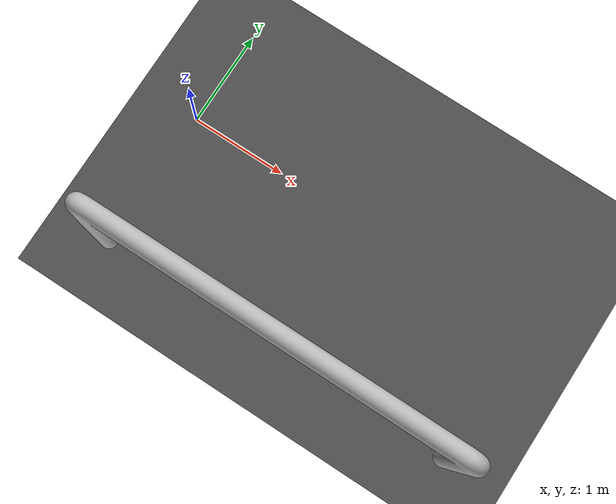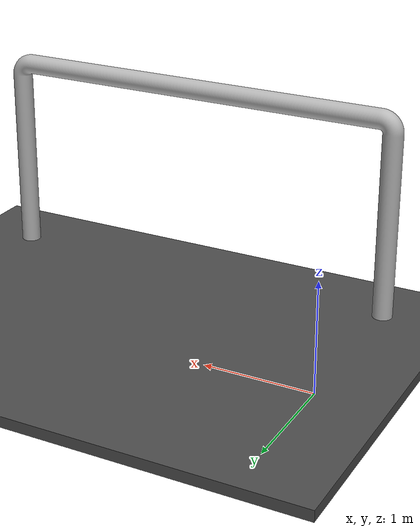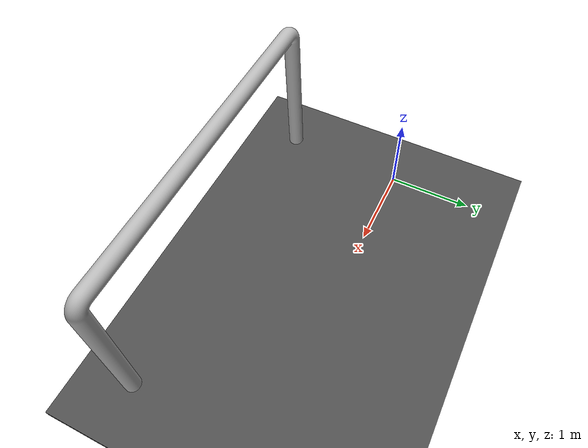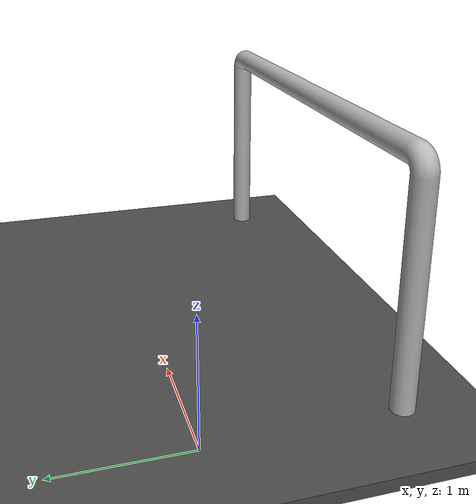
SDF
<?xml version="1.0" ?>
<sdf version="1.5">
  <world name="default">

		<scene>
			<ambient>0.0 0.0 0.0 1.0</ambient>
			<shadows>0</shadows>
		</scene>

    <!-- Lights -->
    <include>
      <uri>model://sun</uri>
    </include>

		<light type="directional" name="my_light">
			<pose>0 0 30 0 0 0</pose>
			<diffuse>1.0 1.0 1.0 1.0</diffuse>
			<specular>.1 .1 .1 1</specular>
			<attenuation>
				  <range>100</range>
			</attenuation>
			<direction>0 0 -1</direction>
		</light>

    <!-- A ground plane -->
    <include>
      <uri>model://ground_plane</uri>
    </include>

    <include>
      <uri>model://various_floor</uri>
    </include>

		<!--PIPES-->
    <model name="pipe6_1">
			<include>
		    <uri>model://pipe6</uri>
		 		<pose>-0.03 -1.46 0.0 0 0 0</pose>
		    <static>1</static>
		  </include>
		</model>

		<!--PHYSICS-->
    <physics name='default_physics' default='0' type='ode'>
      <gravity>0 0 -9.8066</gravity>
      <ode>
        <solver>
          <type>quick</type>
          <iters>10</iters>
          <sor>1.3</sor>
          <use_dynamic_moi_rescaling>0</use_dynamic_moi_rescaling>
        </solver>
        <constraints>
          <cfm>0</cfm>
          <erp>0.2</erp>
          <contact_max_correcting_vel>100</contact_max_correcting_vel>
          <contact_surface_layer>0.001</contact_surface_layer>
        </constraints>
      </ode>
      <max_step_size>0.004</max_step_size>
      <real_time_factor>1</real_time_factor>
      <real_time_update_rate>250</real_time_update_rate>
      <magnetic_field>6.0e-6 2.3e-5 -4.2e-5</magnetic_field>
    </physics>
  </world>
</sdf>

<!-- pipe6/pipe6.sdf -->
<sdf version="1.6">
  <model name="pipe6">
    <link name="link">
      <collision name="collision">
        <geometry>
          <mesh>
            <uri>model://pipe6/meshes/pipe6.dae</uri>
          </mesh>
        </geometry>
      </collision>
      <visual name="visual">
        <geometry>
          <mesh>
            <uri>model://pipe6/meshes/pipe6.dae</uri>
          </mesh>
        </geometry>
      </visual>
    </link>
  </model>
</sdf>

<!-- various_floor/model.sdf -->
<sdf version="1.5">
  <model name="various_floor">
    <static>true</static>
    <link name="link">
      <collision name="collision">
        <geometry>
          <box>
            <size>200 200 .1</size>
          </box>
        </geometry>
      </collision>
      <visual name="visual">
        <cast_shadows>false</cast_shadows>
        <geometry>
          <box>
            <size>200 200 .1</size>
          </box>
        </geometry>
        <material>
          <script>
	    <uri>model://various_floor/materials/scripts</uri>
            <uri>model://various_floor/materials/textures</uri>
	    <name>vrc/asphalt</name>
          </script>
        </material>
      </visual>
    </link>
  </model>
</sdf>
